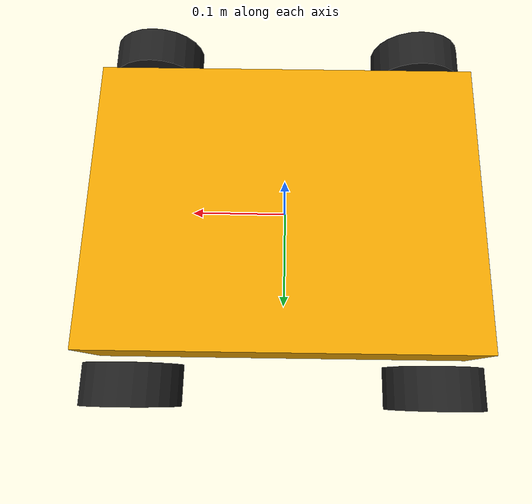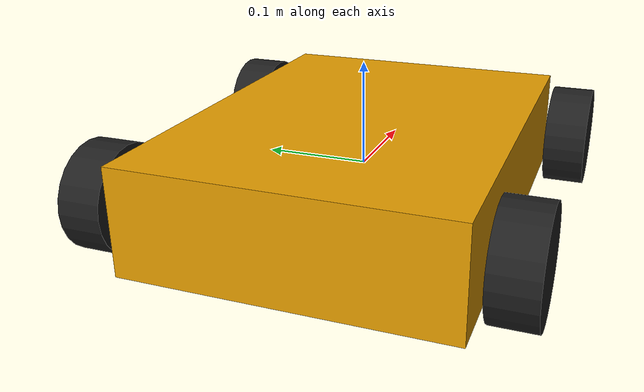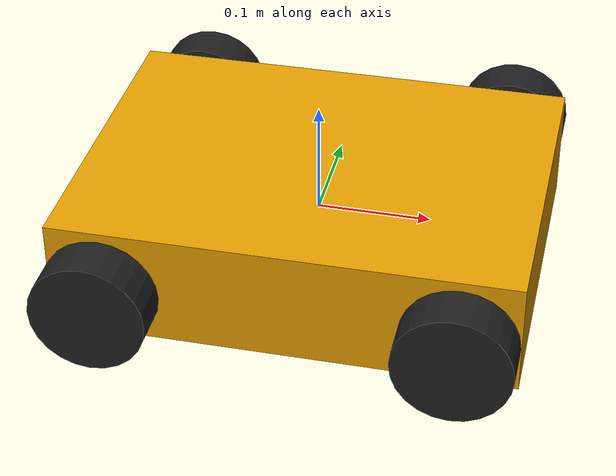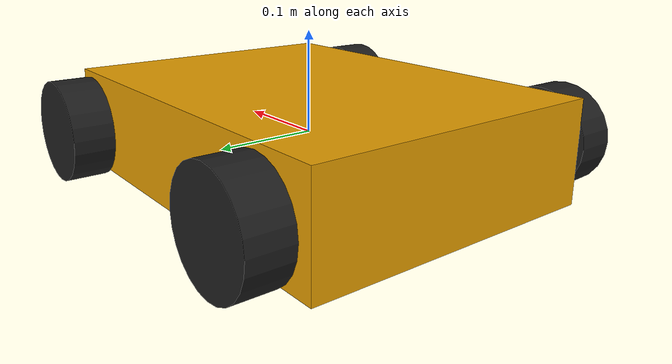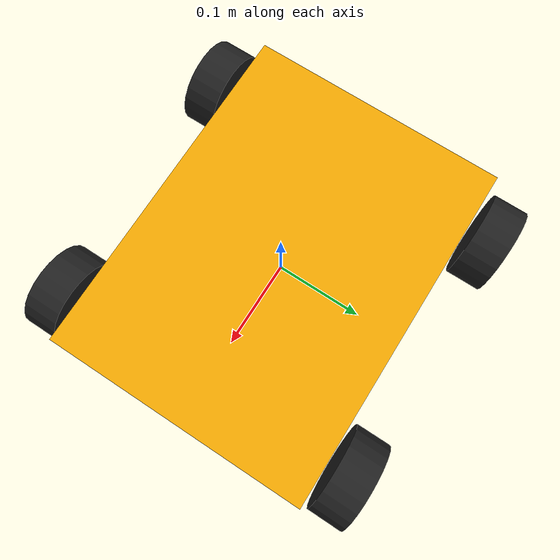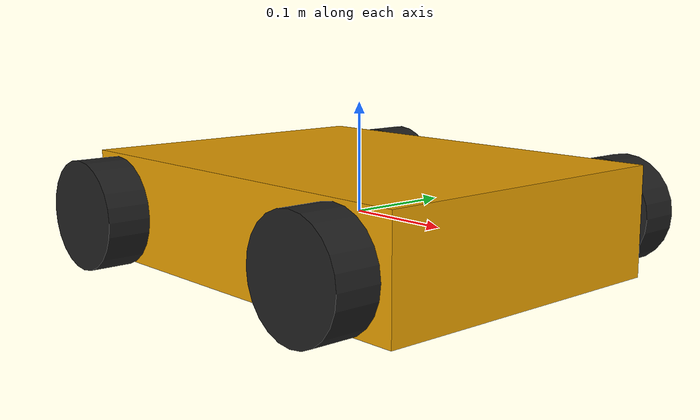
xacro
<?xml version="1.0"?>
<robot xmlns:xacro="http://www.ros.org/wiki/xacro" name="mecanum_bot">

  <link name="base_link">
    <visual><geometry><box size="0.4 0.3 0.1"/></geometry></visual>
    <collision><geometry><box size="0.4 0.3 0.1"/></geometry></collision>
    <inertial>
      <mass value="5.0"/>
      <inertia ixx="0.1" ixy="0" ixz="0" iyy="0.1" iyz="0" izz="0.1"/>
    </inertial>
  </link>

  <xacro:macro name="wheel" params="name x y">
    <link name="${name}_link">
      <visual>
        <geometry><cylinder radius="0.05" length="0.04"/></geometry>
        <material name="black"/>
      </visual>
      <collision>
        <geometry><cylinder radius="0.05" length="0.04"/></geometry>
      </collision>
      <inertial>
        <mass value="0.5"/>
        <inertia ixx="0.01" ixy="0" ixz="0" iyy="0.01" iyz="0" izz="0.01"/>
      </inertial>
    </link>

    <joint name="${name}_joint" type="continuous">
      <parent link="base_link"/>
      <child link="${name}_link"/>
      <origin xyz="${x} ${y} 0" rpy="-1.57 0 0"/>
      <axis xyz="0 0 1"/>
    </joint>
  </xacro:macro>

  <xacro:wheel name="front_left"  x="0.15"  y="0.18"/>
  <xacro:wheel name="front_right" x="0.15"  y="-0.18"/>
  <xacro:wheel name="rear_left"   x="-0.15" y="0.18"/>
  <xacro:wheel name="rear_right"  x="-0.15" y="-0.18"/>

  <ros2_control name="GazeboSystem" type="system">
    <hardware>
      <plugin>gazebo_ros2_control/GazeboSystem</plugin>
    </hardware>
    <joint name="front_left_joint"><command_interface name="velocity"/><state_interface name="velocity"/><state_interface name="position"/></joint>
    <joint name="front_right_joint"><command_interface name="velocity"/><state_interface name="velocity"/><state_interface name="position"/></joint>
    <joint name="rear_left_joint"><command_interface name="velocity"/><state_interface name="velocity"/><state_interface name="position"/></joint>
    <joint name="rear_right_joint"><command_interface name="velocity"/><state_interface name="velocity"/><state_interface name="position"/></joint>
  </ros2_control>

  <gazebo>
    <plugin filename="libgazebo_ros2_control.so" name="gazebo_ros2_control">
      <parameters>$(find my_robot_sim)/config/controllers.yaml</parameters>
    </plugin>
  </gazebo>
</robot>
